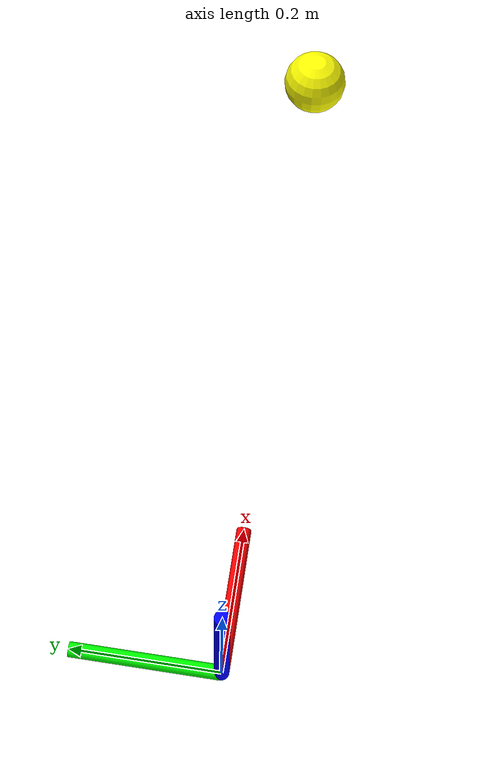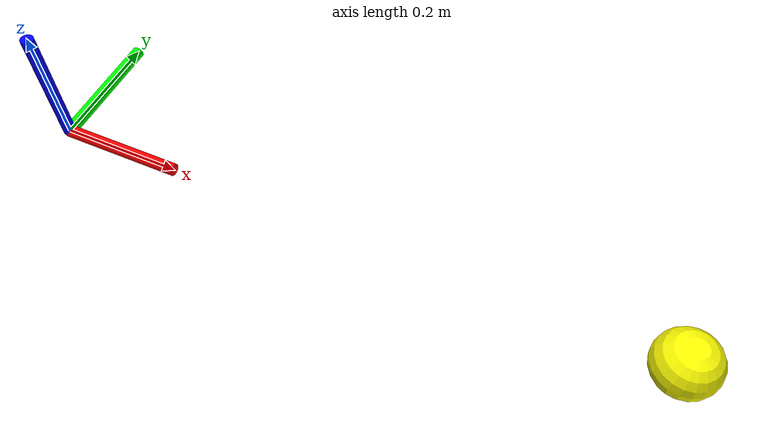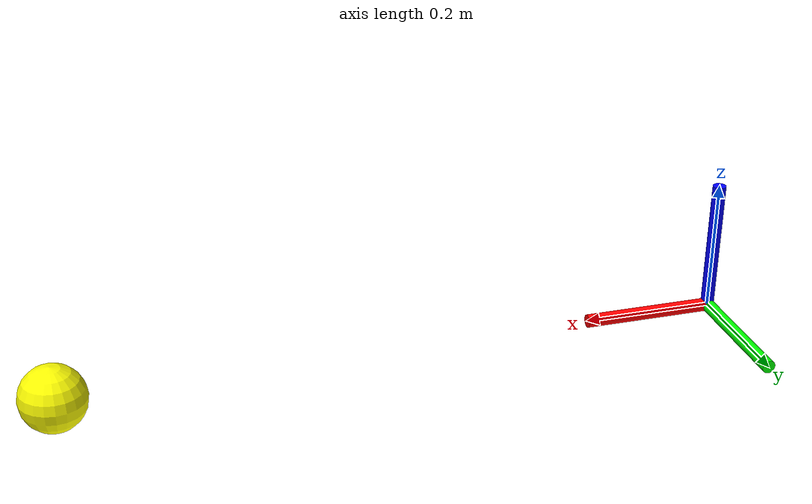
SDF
<?xml version="1.0" ?>
<sdf version="1.6">
  <world name="default">

    <gui>
      <camera name="user">
        <pose>-0.85 -1.63 0.92 0 0.41 0.83</pose>
      </camera>
      <plugin name="lookat" filename="libLookAtDemoPlugin.so">
      </plugin>
    </gui>

    <!-- A global light source -->
    <include>
      <uri>model://sun</uri>
    </include>

    <!-- RGB cylinders representing the resulting frame -->
    <model name="frame">
      <static>true</static>
      <link name="link">
        <visual name="X">
          <pose>0.1 0 0 0 1.57 0</pose>
          <geometry>
            <cylinder>
              <length>0.2</length>
              <radius>0.01</radius>
            </cylinder>
          </geometry>
          <material>
            <diffuse>1 0 0 1</diffuse>
          </material>
        </visual>
        <visual name="Y">
          <pose>0 0.1 0 -1.57 0 0</pose>
          <geometry>
            <cylinder>
              <length>0.2</length>
              <radius>0.01</radius>
            </cylinder>
          </geometry>
          <material>
            <diffuse>0 1 0 1</diffuse>
          </material>
        </visual>
        <visual name="Z">
          <pose>0 0 0.1 0 0 0</pose>
          <geometry>
            <cylinder>
              <length>0.2</length>
              <radius>0.01</radius>
            </cylinder>
          </geometry>
          <material>
            <diffuse>0 0 1 1</diffuse>
          </material>
        </visual>
        <sensor name="camera" type="camera">
          <camera>
            <horizontal_fov>1.047</horizontal_fov>
            <image>
              <width>320</width>
              <height>240</height>
            </image>
            <clip>
              <near>0.1</near>
              <far>100</far>
            </clip>
          </camera>
          <always_on>1</always_on>
          <update_rate>30</update_rate>
          <visualize>true</visualize>
        </sensor>
      </link>
    </model>

    <!-- yellow sphere representing the target point -->
    <model name="target">
      <pose>1 0 0 0 0 0</pose>
      <static>true</static>
      <link name="link">
        <visual name="visual">
          <geometry>
            <sphere>
              <radius>0.05</radius>
            </sphere>
          </geometry>
          <material>
            <diffuse>1 1 0 1</diffuse>
          </material>
        </visual>
      </link>
    </model>

    <!-- single semi-transparent blue axis pointing at the desired Z axis -->
    <model name="desired_z">
      <static>true</static>
      <link name="link">
        <visual name="visual">
          <pose>0.1 0 0 0 1.57 0</pose>
          <geometry>
            <cylinder>
              <length>0.2</length>
              <radius>0.01</radius>
            </cylinder>
          </geometry>
          <transparency>0.7</transparency>
          <material>
            <diffuse>0 0 1 0.3</diffuse>
          </material>
        </visual>
      </link>
    </model>
  </world>
</sdf>
